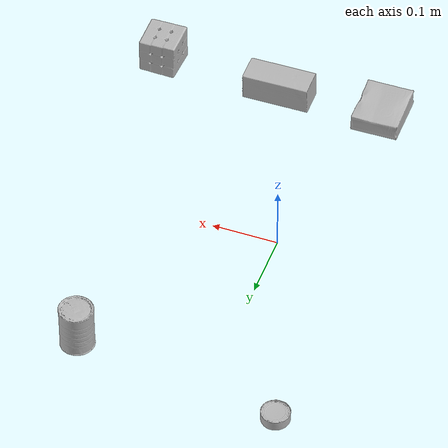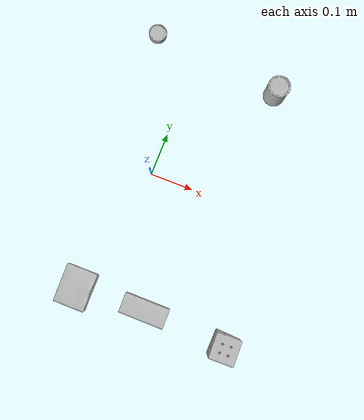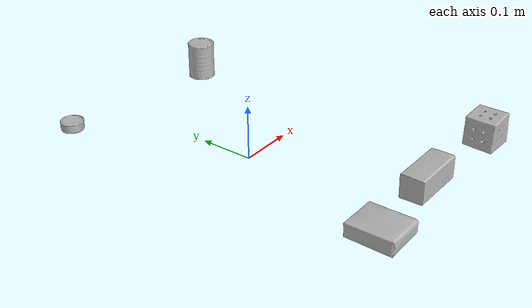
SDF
<?xml version="1.0" ?>
<sdf version="1.4">
  <world name="default">
    <light name="light1" type="point">
      <pose>0 0 1 0 0 0</pose>
      <diffuse>3 3 3 1</diffuse>
      <specular>3 3 3 1</specular>
    </light>
    <light name="light2" type="point">
      <pose>0 0.5 2 0 0 0</pose>
      <diffuse>1 1 1 1</diffuse>
      <specular>1 1 1 1</specular>
    </light>
    <light name="light3" type="point">
      <pose>0 0.5 2 0 0 0</pose>
      <diffuse>3 3 3 1</diffuse>
      <specular>3 3 3 1</specular>
    </light>
    <scene>
      <ambient>0.7 0.7 0.7</ambient>
    </scene>
    <model name="box1">
      <link name="link_box1">
        <collision name="default">
          <geometry>
            <mesh>
              <uri>model://rubiks_cube/collision_meshes/collision.obj</uri>
              <scale>1.0 1.0 1.0</scale>
            </mesh>
          </geometry>
          <surface>
            <friction>
              <ode>
                <mu>0.5</mu>
                <mu2>0.5</mu2>
              </ode>
            </friction>
          </surface>
        </collision>
        <visual name="default">
          <geometry>
            <mesh>
              <uri>model://rubiks_cube/visual_meshes/visual.dae</uri>
              <scale>1.0 1.0 1.0</scale>
            </mesh>
          </geometry>
        </visual>
        <inertial>
          <mass>0.1675702929496765</mass>
          <pose>2.6721041649580002e-05 5.2569666877388954e-05 -7.264316082000732e-06 -0.054672410780645164 -0.09813946178663992 -0.034457105846518836</pose>
          <inertia>
            <ixx>9.259384e-05</ixx>
            <iyy>9.2162045e-05</iyy>
            <izz>9.336113e-05</izz>
            <ixy>0</ixy>
            <ixz>0</ixz>
            <iyz>0</iyz>
          </inertia>
        </inertial>
      </link>
      <pose>0.2899315357208252 -0.30022749304771423 0.028679009526968002 -3.9930442842056605e-08 2.9918744532364247e-08 5.203764259353912e-07</pose>
    </model>
    <model name="box2">
      <link name="link_box2">
        <collision name="default">
          <geometry>
            <mesh>
              <uri>model://wood_block/collision_meshes/collision.obj</uri>
              <scale>0.5 0.5 0.5</scale>
            </mesh>
          </geometry>
          <surface>
            <friction>
              <ode>
                <mu>0.5</mu>
                <mu2>0.5</mu2>
              </ode>
            </friction>
          </surface>
        </collision>
        <visual name="default">
          <geometry>
            <mesh>
              <uri>model://wood_block/visual_meshes/visual.dae</uri>
              <scale>0.5 0.5 0.5</scale>
            </mesh>
          </geometry>
        </visual>
        <inertial>
          <mass>0.20594346523284912</mass>
          <pose>-2.9066577553749084e-06 -0.000285404734313488 0.00013204291462898254 -0.05220975528833662 -0.005192695571830849 -0.0068613788586691015</pose>
          <inertia>
            <ixx>6.8895875e-05</ixx>
            <iyy>0.0002176421</iyy>
            <izz>0.00021682802</izz>
            <ixy>0</ixy>
            <ixz>0</ixz>
            <iyz>0</iyz>
          </inertia>
        </inertial>
      </link>
      <pose>0.09994177520275116 -0.28943443298339844 0.022629259154200554 -0.005208545980550539 0.005718723832485896 0.005303659093792797</pose>
    </model>
    <model name="box3">
      <link name="link_box3">
        <collision name="default">
          <geometry>
            <mesh>
              <uri>model://gelatin_box/collision_meshes/collision.obj</uri>
              <scale>1.0 1.0 1.0</scale>
            </mesh>
          </geometry>
          <surface>
            <friction>
              <ode>
                <mu>0.5</mu>
                <mu2>0.5</mu2>
              </ode>
            </friction>
          </surface>
        </collision>
        <visual name="default">
          <geometry>
            <mesh>
              <uri>model://gelatin_box/visual_meshes/visual.dae</uri>
              <scale>1.0 1.0 1.0</scale>
            </mesh>
          </geometry>
        </visual>
        <inertial>
          <mass>0.27371785044670105</mass>
          <pose>0.0004319618456065655 0.00011156871914863586 -0.0003640321083366871 -0.0010503717367230932 -0.004755817294347581 0.01644056133308036</pose>
          <inertia>
            <ixx>0.00019322247</ixx>
            <iyy>0.00013801781</iyy>
            <izz>0.00029412765</izz>
            <ixy>0</ixy>
            <ixz>0</ixz>
            <iyz>0</iyz>
          </inertia>
        </inertial>
      </link>
      <pose>-0.06004871800541878 -0.30007168650627136 0.015168312937021255 0.005597502333185412 -0.007304566978523321 6.356067804693956e-06</pose>
    </model>
    <model name="can1">
      <link name="link_can1">
        <collision name="default">
          <geometry>
            <mesh>
              <uri>model://master_chef_can/collision_meshes/collision.obj</uri>
              <scale>0.5 0.5 0.5</scale>
            </mesh>
          </geometry>
          <surface>
            <friction>
              <ode>
                <mu>0.5</mu>
                <mu2>0.5</mu2>
              </ode>
            </friction>
          </surface>
        </collision>
        <visual name="default">
          <geometry>
            <mesh>
              <uri>model://master_chef_can/visual_meshes/visual.dae</uri>
              <scale>0.5 0.5 0.5</scale>
            </mesh>
          </geometry>
        </visual>
        <inertial>
          <mass>0.18439537286758423</mass>
          <pose>-4.6619643399026245e-05 1.3926847941547749e-07 -5.080040136817843e-05 -0.0017995053130472594 0.0006479450382529565 -0.6102509153361354</pose>
          <inertia>
            <ixx>0.00010822757</ixx>
            <iyy>0.00010743104</iyy>
            <izz>5.9804017e-05</izz>
            <ixy>0</ixy>
            <ixz>0</ixz>
            <iyz>0</iyz>
          </inertia>
        </inertial>
      </link>
      <pose>0.20012223720550537 0.2800842523574829 0.03530200198292732 -1.4130778121821289e-06 -7.746571093084846e-07 -7.733293472011847e-07</pose>
    </model>
    <model name="can2">
      <link name="link_can2">
        <collision name="default">
          <geometry>
            <mesh>
              <uri>model://tuna_fish_can/collision_meshes/collision.obj</uri>
              <scale>0.5 0.5 0.5</scale>
            </mesh>
          </geometry>
          <surface>
            <friction>
              <ode>
                <mu>0.5</mu>
                <mu2>0.5</mu2>
              </ode>
            </friction>
          </surface>
        </collision>
        <visual name="default">
          <geometry>
            <mesh>
              <uri>model://tuna_fish_can/visual_meshes/visual.dae</uri>
              <scale>0.5 0.5 0.5</scale>
            </mesh>
          </geometry>
        </visual>
        <inertial>
          <mass>0.02825223281979561</mass>
          <pose>-2.0362142095109448e-05 -7.256046956172213e-06 -0.0005269023240543902 -0.0017944745775900258 0.00017164550693472895 0.24055441971144348</pose>
          <inertia>
            <ixx>3.819744e-06</ixx>
            <iyy>3.803824e-06</iyy>
            <izz>6.536128e-06</izz>
            <ixy>0</ixy>
            <ixz>0</ixz>
            <iyz>0</iyz>
          </inertia>
        </inertial>
      </link>
      <pose>-0.11002501845359802 0.3200227618217468 0.008520001545548439 -4.6129565776324364e-09 -1.8524585877371853e-08 1.5909092683717463e-11</pose>
    </model>
  </world>
</sdf>
